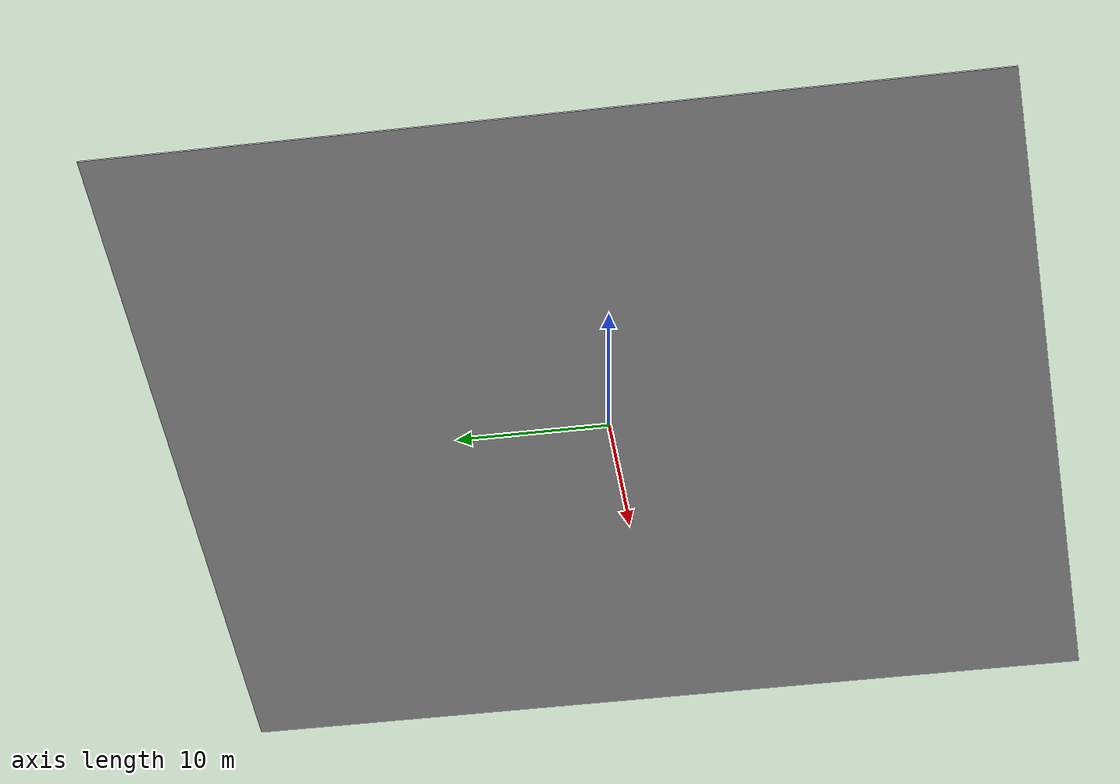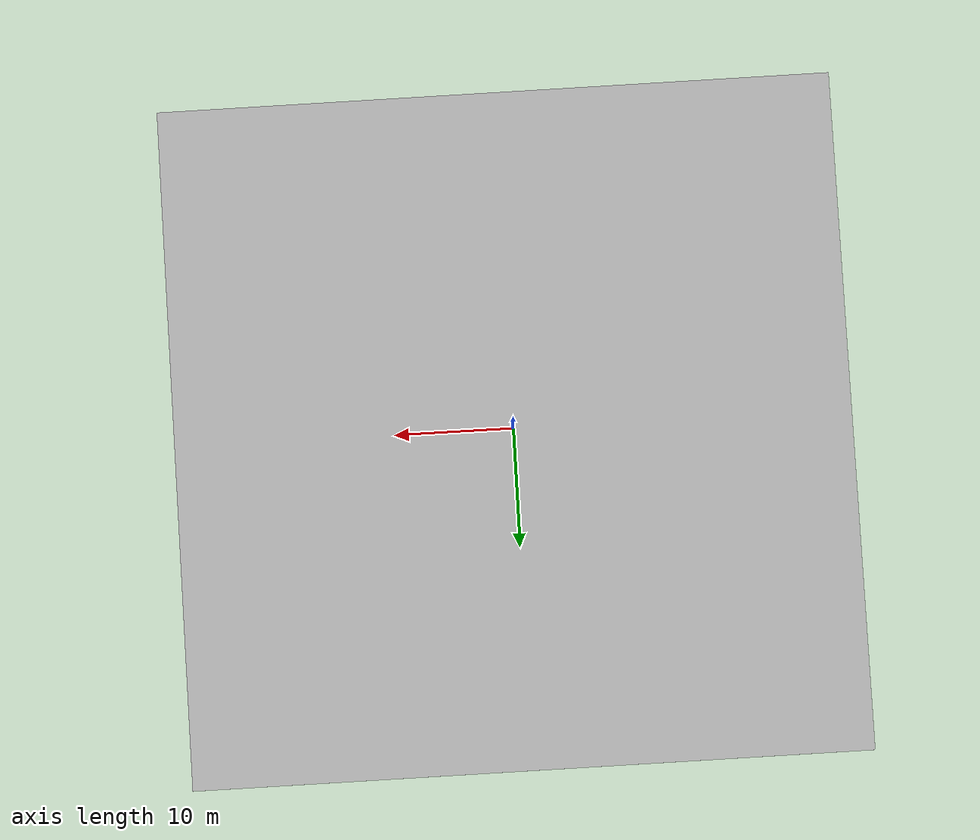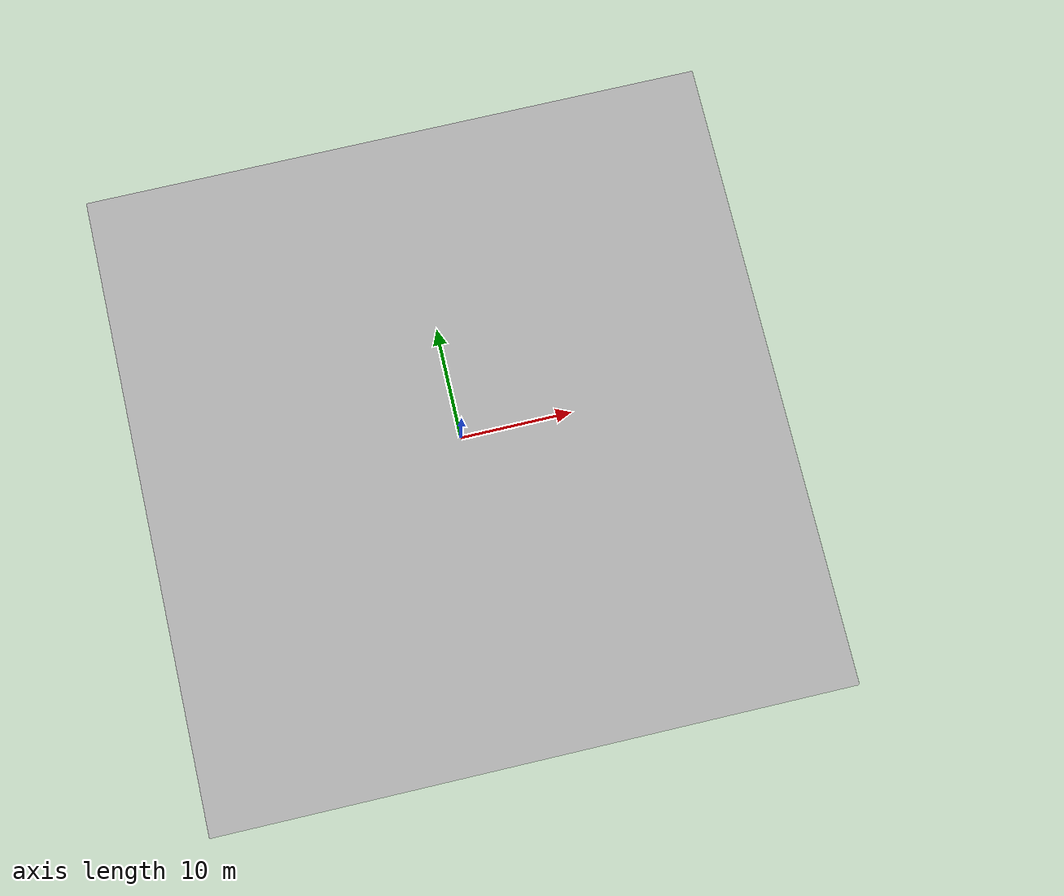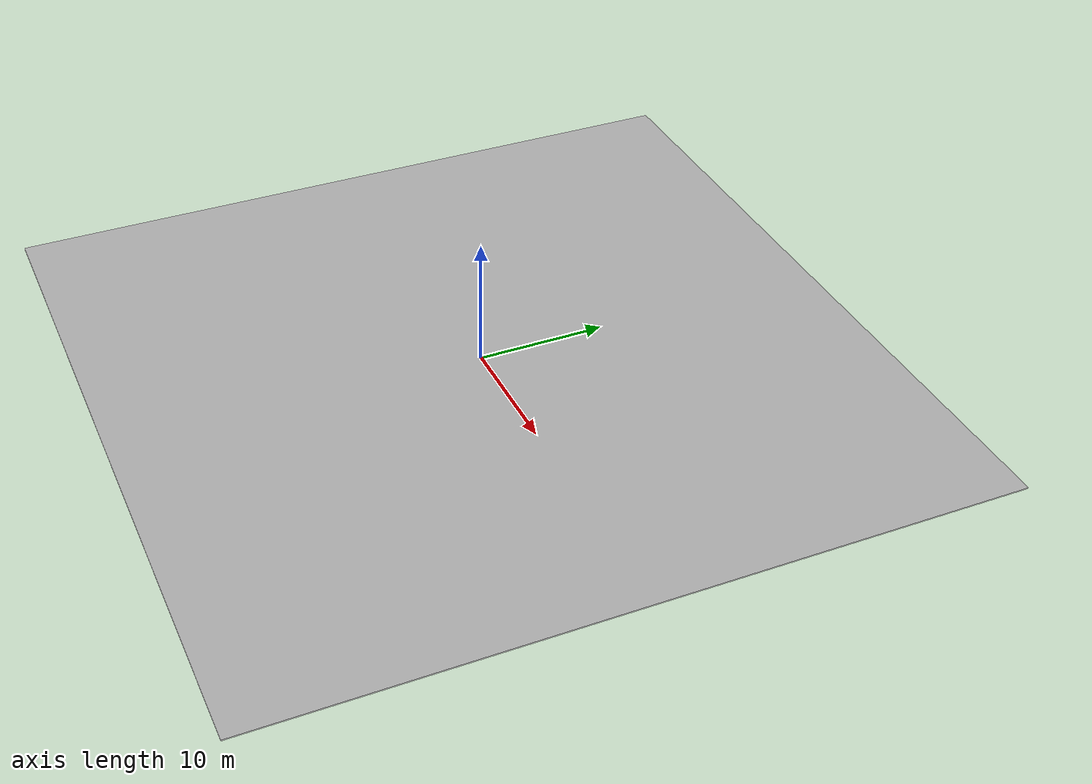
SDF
<?xml version="1.0" ?>
<sdf version="1.5">
  <model name="basketball_court">
    <static>true</static>
    <link name="floor">
      <collision name="collision">
        <geometry>
          <box>
            <size>57.18 57.5 .1</size>
          </box>
        </geometry>
      </collision>
      <visual name="visual">
        <cast_shadows>false</cast_shadows>
        <geometry>
          <box>
            <size>57.18 57.5 .1</size>
          </box>
        </geometry>
        <material>
          <script>
            <uri>model://basketball_court/materials/scripts</uri>
            <uri>model://basketball_court/materials/textures</uri>
            <name>basketball_court</name>
          </script>
        </material>
      </visual>
    </link>
  </model>
</sdf>
